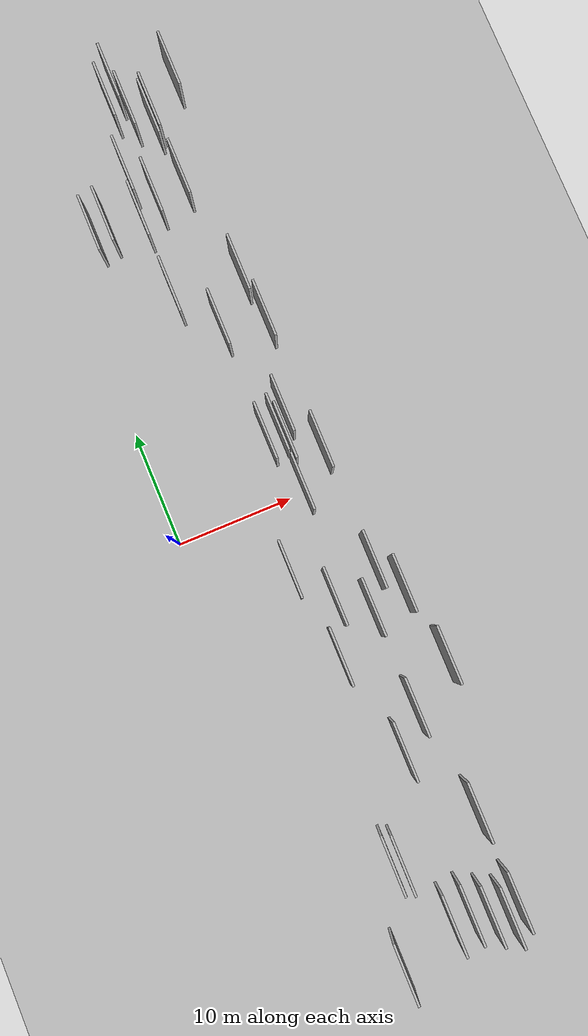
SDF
<?xml version="1.0" encoding="utf-8"?>

<sdf version="1.6">

   <world name="default">

      <gui fullscreen="0">

         <camera name="user_camera">

            <pose>-15 0 4.57585 0 0 0</pose>

            <view_controller>orbit</view_controller>

         </camera>

      </gui>

      <scene>

         <sky>

           <clouds>

             <speed>12</speed>

           </clouds>

         </sky>

         <ambient>0.4 0.4 0.4 1</ambient>

         <background>0.7 0.7 0.7 1</background>

         <shadows>1</shadows>

      </scene>

      <gravity>0 0 -9.8066</gravity>

      <magnetic_field>6e-06 2.3e-05 -4.2e-05</magnetic_field>

      <physics default="0" name="default_physics" type="ode">

         <ode>

            <solver>

               <type>quick</type>

               <iters>10</iters>

               <sor>1.0</sor>

               <use_dynamic_moi_rescaling>0</use_dynamic_moi_rescaling>

            </solver>

            <constraints>

               <cfm>0</cfm>

               <erp>0.2</erp>

               <contact_max_correcting_vel>100</contact_max_correcting_vel>

               <contact_surface_layer>0.001</contact_surface_layer>

            </constraints>

         </ode>

         <max_step_size>0.004</max_step_size>

         <real_time_factor>1</real_time_factor>

         <real_time_update_rate>250</real_time_update_rate>

      </physics>

      <light name="sun" type="directional">

         <cast_shadows>1</cast_shadows>

         <pose>0 0 10 0 0 0</pose>

         <diffuse>0.8 0.8 0.8 1</diffuse>

         <specular>0.2 0.2 0.2 1</specular>

         <attenuation>

            <range>1000</range>

            <constant>0.9</constant>

            <linear>0.01</linear>

            <quadratic>0.001</quadratic>

         </attenuation>

         <direction>-0.5 0.1 -0.9</direction>

      </light>

      <include>

         <name>ground_plane_1</name>

         <uri>model://HANNAS_ground_plane</uri>

         <pose>0 0 0  0 0 0</pose>

      </include>

      <include>

         <name>ground_plane_2</name>

         <uri>model://HANNAS_ground_plane</uri>

         <pose>100 0 0  0 0 0</pose>

      </include>

      <model name="HANNAS_wall_1">

         <static>1</static>

         <pose frame="">10.1466 15.5765 0.0 0.000000 0.000000 1.570796</pose>

         <link name="link">

            <pose frame="">0 0 2.50 0 0 0</pose>

            <collision name="collision">

               <geometry>

                  <box>

                     <size>5.00 0.2 5.00</size>

                  </box>

               </geometry>

               <max_contacts>10</max_contacts>

               <surface>

                  <contact>

                     <ode/>

                  </contact>

                  <bounce/>

                  <friction>

                     <torsional>

                        <ode/>

                     </torsional>

                     <ode/>

                  </friction>

               </surface>

            </collision>

            <visual name="visual">

               <cast_shadows>0</cast_shadows>

               <geometry>

                  <box>

                     <size>5.00 0.2 5.00</size>

                  </box>

               </geometry>

               <material>

                  <script>

                     <uri>model://HANNAS_wall/materials/scripts</uri>

                     <uri>model://HANNAS_wall/materials/textures</uri>

                     <name>vrc/HANNAS_wall</name>

                  </script>

               </material>

            </visual>

            <self_collide>0</self_collide>

            <enable_wind>0</enable_wind>

            <kinematic>0</kinematic>

         </link>

      </model>

      <model name="HANNAS_wall_2">

         <static>1</static>

         <pose frame="">11.3341 0.4889 0.0 0.000000 0.000000 1.570796</pose>

         <link name="link">

            <pose frame="">0 0 2.50 0 0 0</pose>

            <collision name="collision">

               <geometry>

                  <box>

                     <size>5.00 0.2 5.00</size>

                  </box>

               </geometry>

               <max_contacts>10</max_contacts>

               <surface>

                  <contact>

                     <ode/>

                  </contact>

                  <bounce/>

                  <friction>

                     <torsional>

                        <ode/>

                     </torsional>

                     <ode/>

                  </friction>

               </surface>

            </collision>

            <visual name="visual">

               <cast_shadows>0</cast_shadows>

               <geometry>

                  <box>

                     <size>5.00 0.2 5.00</size>

                  </box>

               </geometry>

               <material>

                  <script>

                     <uri>model://HANNAS_wall/materials/scripts</uri>

                     <uri>model://HANNAS_wall/materials/textures</uri>

                     <name>vrc/HANNAS_wall</name>

                  </script>

               </material>

            </visual>

            <self_collide>0</self_collide>

            <enable_wind>0</enable_wind>

            <kinematic>0</kinematic>

         </link>

      </model>

      <model name="HANNAS_wall_3">

         <static>1</static>

         <pose frame="">13.8696 14.8162 0.0 0.000000 0.000000 1.570796</pose>

         <link name="link">

            <pose frame="">0 0 2.50 0 0 0</pose>

            <collision name="collision">

               <geometry>

                  <box>

                     <size>5.00 0.2 5.00</size>

                  </box>

               </geometry>

               <max_contacts>10</max_contacts>

               <surface>

                  <contact>

                     <ode/>

                  </contact>

                  <bounce/>

                  <friction>

                     <torsional>

                        <ode/>

                     </torsional>

                     <ode/>

                  </friction>

               </surface>

            </collision>

            <visual name="visual">

               <cast_shadows>0</cast_shadows>

               <geometry>

                  <box>

                     <size>5.00 0.2 5.00</size>

                  </box>

               </geometry>

               <material>

                  <script>

                     <uri>model://HANNAS_wall/materials/scripts</uri>

                     <uri>model://HANNAS_wall/materials/textures</uri>

                     <name>vrc/HANNAS_wall</name>

                  </script>

               </material>

            </visual>

            <self_collide>0</self_collide>

            <enable_wind>0</enable_wind>

            <kinematic>0</kinematic>

         </link>

      </model>

      <model name="HANNAS_wall_4">

         <static>1</static>

         <pose frame="">7.4729 26.5714 0.0 0.000000 0.000000 1.570796</pose>

         <link name="link">

            <pose frame="">0 0 2.50 0 0 0</pose>

            <collision name="collision">

               <geometry>

                  <box>

                     <size>5.00 0.2 5.00</size>

                  </box>

               </geometry>

               <max_contacts>10</max_contacts>

               <surface>

                  <contact>

                     <ode/>

                  </contact>

                  <bounce/>

                  <friction>

                     <torsional>

                        <ode/>

                     </torsional>

                     <ode/>

                  </friction>

               </surface>

            </collision>

            <visual name="visual">

               <cast_shadows>0</cast_shadows>

               <geometry>

                  <box>

                     <size>5.00 0.2 5.00</size>

                  </box>

               </geometry>

               <material>

                  <script>

                     <uri>model://HANNAS_wall/materials/scripts</uri>

                     <uri>model://HANNAS_wall/materials/textures</uri>

                     <name>vrc/HANNAS_wall</name>

                  </script>

               </material>

            </visual>

            <self_collide>0</self_collide>

            <enable_wind>0</enable_wind>

            <kinematic>0</kinematic>

         </link>

      </model>

      <model name="HANNAS_wall_5">

         <static>1</static>

         <pose frame="">12.2515 6.9655 0.0 0.000000 0.000000 1.570796</pose>

         <link name="link">

            <pose frame="">0 0 2.50 0 0 0</pose>

            <collision name="collision">

               <geometry>

                  <box>

                     <size>5.00 0.2 5.00</size>

                  </box>

               </geometry>

               <max_contacts>10</max_contacts>

               <surface>

                  <contact>

                     <ode/>

                  </contact>

                  <bounce/>

                  <friction>

                     <torsional>

                        <ode/>

                     </torsional>

                     <ode/>

                  </friction>

               </surface>

            </collision>

            <visual name="visual">

               <cast_shadows>0</cast_shadows>

               <geometry>

                  <box>

                     <size>5.00 0.2 5.00</size>

                  </box>

               </geometry>

               <material>

                  <script>

                     <uri>model://HANNAS_wall/materials/scripts</uri>

                     <uri>model://HANNAS_wall/materials/textures</uri>

                     <name>vrc/HANNAS_wall</name>

                  </script>

               </material>

            </visual>

            <self_collide>0</self_collide>

            <enable_wind>0</enable_wind>

            <kinematic>0</kinematic>

         </link>

      </model>

      <model name="HANNAS_wall_6">

         <static>1</static>

         <pose frame="">3.2671 26.9560 0.0 0.000000 0.000000 1.570796</pose>

         <link name="link">

            <pose frame="">0 0 2.50 0 0 0</pose>

            <collision name="collision">

               <geometry>

                  <box>

                     <size>5.00 0.2 5.00</size>

                  </box>

               </geometry>

               <max_contacts>10</max_contacts>

               <surface>

                  <contact>

                     <ode/>

                  </contact>

                  <bounce/>

                  <friction>

                     <torsional>

                        <ode/>

                     </torsional>

                     <ode/>

                  </friction>

               </surface>

            </collision>

            <visual name="visual">

               <cast_shadows>0</cast_shadows>

               <geometry>

                  <box>

                     <size>5.00 0.2 5.00</size>

                  </box>

               </geometry>

               <material>

                  <script>

                     <uri>model://HANNAS_wall/materials/scripts</uri>

                     <uri>model://HANNAS_wall/materials/textures</uri>

                     <name>vrc/HANNAS_wall</name>

                  </script>

               </material>

            </visual>

            <self_collide>0</self_collide>

            <enable_wind>0</enable_wind>

            <kinematic>0</kinematic>

         </link>

      </model>

      <model name="HANNAS_wall_7">

         <static>1</static>

         <pose frame="">4.5960 27.2336 0.0 0.000000 0.000000 1.570796</pose>

         <link name="link">

            <pose frame="">0 0 2.50 0 0 0</pose>

            <collision name="collision">

               <geometry>

                  <box>

                     <size>5.00 0.2 5.00</size>

                  </box>

               </geometry>

               <max_contacts>10</max_contacts>

               <surface>

                  <contact>

                     <ode/>

                  </contact>

                  <bounce/>

                  <friction>

                     <torsional>

                        <ode/>

                     </torsional>

                     <ode/>

                  </friction>

               </surface>

            </collision>

            <visual name="visual">

               <cast_shadows>0</cast_shadows>

               <geometry>

                  <box>

                     <size>5.00 0.2 5.00</size>

                  </box>

               </geometry>

               <material>

                  <script>

                     <uri>model://HANNAS_wall/materials/scripts</uri>

                     <uri>model://HANNAS_wall/materials/textures</uri>

                     <name>vrc/HANNAS_wall</name>

                  </script>

               </material>

            </visual>

            <self_collide>0</self_collide>

            <enable_wind>0</enable_wind>

            <kinematic>0</kinematic>

         </link>

      </model>

      <model name="HANNAS_wall_8">

         <static>1</static>

         <pose frame="">7.7250 -5.6451 0.0 0.000000 0.000000 1.570796</pose>

         <link name="link">

            <pose frame="">0 0 2.50 0 0 0</pose>

            <collision name="collision">

               <geometry>

                  <box>

                     <size>5.00 0.2 5.00</size>

                  </box>

               </geometry>

               <max_contacts>10</max_contacts>

               <surface>

                  <contact>

                     <ode/>

                  </contact>

                  <bounce/>

                  <friction>

                     <torsional>

                        <ode/>

                     </torsional>

                     <ode/>

                  </friction>

               </surface>

            </collision>

            <visual name="visual">

               <cast_shadows>0</cast_shadows>

               <geometry>

                  <box>

                     <size>5.00 0.2 5.00</size>

                  </box>

               </geometry>

               <material>

                  <script>

                     <uri>model://HANNAS_wall/materials/scripts</uri>

                     <uri>model://HANNAS_wall/materials/textures</uri>

                     <name>vrc/HANNAS_wall</name>

                  </script>

               </material>

            </visual>

            <self_collide>0</self_collide>

            <enable_wind>0</enable_wind>

            <kinematic>0</kinematic>

         </link>

      </model>

      <model name="HANNAS_wall_9">

         <static>1</static>

         <pose frame="">14.1129 -28.6746 0.0 0.000000 0.000000 1.570796</pose>

         <link name="link">

            <pose frame="">0 0 2.50 0 0 0</pose>

            <collision name="collision">

               <geometry>

                  <box>

                     <size>5.00 0.2 5.00</size>

                  </box>

               </geometry>

               <max_contacts>10</max_contacts>

               <surface>

                  <contact>

                     <ode/>

                  </contact>

                  <bounce/>

                  <friction>

                     <torsional>

                        <ode/>

                     </torsional>

                     <ode/>

                  </friction>

               </surface>

            </collision>

            <visual name="visual">

               <cast_shadows>0</cast_shadows>

               <geometry>

                  <box>

                     <size>5.00 0.2 5.00</size>

                  </box>

               </geometry>

               <material>

                  <script>

                     <uri>model://HANNAS_wall/materials/scripts</uri>

                     <uri>model://HANNAS_wall/materials/textures</uri>

                     <name>vrc/HANNAS_wall</name>

                  </script>

               </material>

            </visual>

            <self_collide>0</self_collide>

            <enable_wind>0</enable_wind>

            <kinematic>0</kinematic>

         </link>

      </model>

      <model name="HANNAS_wall_10">

         <static>1</static>

         <pose frame="">11.5134 34.4503 0.0 0.000000 0.000000 1.570796</pose>

         <link name="link">

            <pose frame="">0 0 2.50 0 0 0</pose>

            <collision name="collision">

               <geometry>

                  <box>

                     <size>5.00 0.2 5.00</size>

                  </box>

               </geometry>

               <max_contacts>10</max_contacts>

               <surface>

                  <contact>

                     <ode/>

                  </contact>

                  <bounce/>

                  <friction>

                     <torsional>

                        <ode/>

                     </torsional>

                     <ode/>

                  </friction>

               </surface>

            </collision>

            <visual name="visual">

               <cast_shadows>0</cast_shadows>

               <geometry>

                  <box>

                     <size>5.00 0.2 5.00</size>

                  </box>

               </geometry>

               <material>

                  <script>

                     <uri>model://HANNAS_wall/materials/scripts</uri>

                     <uri>model://HANNAS_wall/materials/textures</uri>

                     <name>vrc/HANNAS_wall</name>

                  </script>

               </material>

            </visual>

            <self_collide>0</self_collide>

            <enable_wind>0</enable_wind>

            <kinematic>0</kinematic>

         </link>

      </model>

      <model name="HANNAS_wall_11">

         <static>1</static>

         <pose frame="">11.9102 -36.1783 0.0 0.000000 0.000000 1.570796</pose>

         <link name="link">

            <pose frame="">0 0 2.50 0 0 0</pose>

            <collision name="collision">

               <geometry>

                  <box>

                     <size>5.00 0.2 5.00</size>

                  </box>

               </geometry>

               <max_contacts>10</max_contacts>

               <surface>

                  <contact>

                     <ode/>

                  </contact>

                  <bounce/>

                  <friction>

                     <torsional>

                        <ode/>

                     </torsional>

                     <ode/>

                  </friction>

               </surface>

            </collision>

            <visual name="visual">

               <cast_shadows>0</cast_shadows>

               <geometry>

                  <box>

                     <size>5.00 0.2 5.00</size>

                  </box>

               </geometry>

               <material>

                  <script>

                     <uri>model://HANNAS_wall/materials/scripts</uri>

                     <uri>model://HANNAS_wall/materials/textures</uri>

                     <name>vrc/HANNAS_wall</name>

                  </script>

               </material>

            </visual>

            <self_collide>0</self_collide>

            <enable_wind>0</enable_wind>

            <kinematic>0</kinematic>

         </link>

      </model>

      <model name="HANNAS_wall_12">

         <static>1</static>

         <pose frame="">12.7768 -19.4312 0.0 0.000000 0.000000 1.570796</pose>

         <link name="link">

            <pose frame="">0 0 2.50 0 0 0</pose>

            <collision name="collision">

               <geometry>

                  <box>

                     <size>5.00 0.2 5.00</size>

                  </box>

               </geometry>

               <max_contacts>10</max_contacts>

               <surface>

                  <contact>

                     <ode/>

                  </contact>

                  <bounce/>

                  <friction>

                     <torsional>

                        <ode/>

                     </torsional>

                     <ode/>

                  </friction>

               </surface>

            </collision>

            <visual name="visual">

               <cast_shadows>0</cast_shadows>

               <geometry>

                  <box>

                     <size>5.00 0.2 5.00</size>

                  </box>

               </geometry>

               <material>

                  <script>

                     <uri>model://HANNAS_wall/materials/scripts</uri>

                     <uri>model://HANNAS_wall/materials/textures</uri>

                     <name>vrc/HANNAS_wall</name>

                  </script>

               </material>

            </visual>

            <self_collide>0</self_collide>

            <enable_wind>0</enable_wind>

            <kinematic>0</kinematic>

         </link>

      </model>

      <model name="HANNAS_wall_13">

         <static>1</static>

         <pose frame="">12.6726 -10.9456 0.0 0.000000 0.000000 1.570796</pose>

         <link name="link">

            <pose frame="">0 0 2.50 0 0 0</pose>

            <collision name="collision">

               <geometry>

                  <box>

                     <size>5.00 0.2 5.00</size>

                  </box>

               </geometry>

               <max_contacts>10</max_contacts>

               <surface>

                  <contact>

                     <ode/>

                  </contact>

                  <bounce/>

                  <friction>

                     <torsional>

                        <ode/>

                     </torsional>

                     <ode/>

                  </friction>

               </surface>

            </collision>

            <visual name="visual">

               <cast_shadows>0</cast_shadows>

               <geometry>

                  <box>

                     <size>5.00 0.2 5.00</size>

                  </box>

               </geometry>

               <material>

                  <script>

                     <uri>model://HANNAS_wall/materials/scripts</uri>

                     <uri>model://HANNAS_wall/materials/textures</uri>

                     <name>vrc/HANNAS_wall</name>

                  </script>

               </material>

            </visual>

            <self_collide>0</self_collide>

            <enable_wind>0</enable_wind>

            <kinematic>0</kinematic>

         </link>

      </model>

      <model name="HANNAS_wall_14">

         <static>1</static>

         <pose frame="">10.5864 -22.2286 0.0 0.000000 0.000000 1.570796</pose>

         <link name="link">

            <pose frame="">0 0 2.50 0 0 0</pose>

            <collision name="collision">

               <geometry>

                  <box>

                     <size>5.00 0.2 5.00</size>

                  </box>

               </geometry>

               <max_contacts>10</max_contacts>

               <surface>

                  <contact>

                     <ode/>

                  </contact>

                  <bounce/>

                  <friction>

                     <torsional>

                        <ode/>

                     </torsional>

                     <ode/>

                  </friction>

               </surface>

            </collision>

            <visual name="visual">

               <cast_shadows>0</cast_shadows>

               <geometry>

                  <box>

                     <size>5.00 0.2 5.00</size>

                  </box>

               </geometry>

               <material>

                  <script>

                     <uri>model://HANNAS_wall/materials/scripts</uri>

                     <uri>model://HANNAS_wall/materials/textures</uri>

                     <name>vrc/HANNAS_wall</name>

                  </script>

               </material>

            </visual>

            <self_collide>0</self_collide>

            <enable_wind>0</enable_wind>

            <kinematic>0</kinematic>

         </link>

      </model>

      <model name="HANNAS_wall_15">

         <static>1</static>

         <pose frame="">15.6768 -10.1167 0.0 0.000000 0.000000 1.570796</pose>

         <link name="link">

            <pose frame="">0 0 2.50 0 0 0</pose>

            <collision name="collision">

               <geometry>

                  <box>

                     <size>5.00 0.2 5.00</size>

                  </box>

               </geometry>

               <max_contacts>10</max_contacts>

               <surface>

                  <contact>

                     <ode/>

                  </contact>

                  <bounce/>

                  <friction>

                     <torsional>

                        <ode/>

                     </torsional>

                     <ode/>

                  </friction>

               </surface>

            </collision>

            <visual name="visual">

               <cast_shadows>0</cast_shadows>

               <geometry>

                  <box>

                     <size>5.00 0.2 5.00</size>

                  </box>

               </geometry>

               <material>

                  <script>

                     <uri>model://HANNAS_wall/materials/scripts</uri>

                     <uri>model://HANNAS_wall/materials/textures</uri>

                     <name>vrc/HANNAS_wall</name>

                  </script>

               </material>

            </visual>

            <self_collide>0</self_collide>

            <enable_wind>0</enable_wind>

            <kinematic>0</kinematic>

         </link>

      </model>

      <model name="HANNAS_wall_16">

         <static>1</static>

         <pose frame="">4.1034 -37.5256 0.0 0.000000 0.000000 1.570796</pose>

         <link name="link">

            <pose frame="">0 0 2.50 0 0 0</pose>

            <collision name="collision">

               <geometry>

                  <box>

                     <size>5.00 0.2 5.00</size>

                  </box>

               </geometry>

               <max_contacts>10</max_contacts>

               <surface>

                  <contact>

                     <ode/>

                  </contact>

                  <bounce/>

                  <friction>

                     <torsional>

                        <ode/>

                     </torsional>

                     <ode/>

                  </friction>

               </surface>

            </collision>

            <visual name="visual">

               <cast_shadows>0</cast_shadows>

               <geometry>

                  <box>

                     <size>5.00 0.2 5.00</size>

                  </box>

               </geometry>

               <material>

                  <script>

                     <uri>model://HANNAS_wall/materials/scripts</uri>

                     <uri>model://HANNAS_wall/materials/textures</uri>

                     <name>vrc/HANNAS_wall</name>

                  </script>

               </material>

            </visual>

            <self_collide>0</self_collide>

            <enable_wind>0</enable_wind>

            <kinematic>0</kinematic>

         </link>

      </model>

      <model name="HANNAS_wall_17">

         <static>1</static>

         <pose frame="">11.7766 34.9597 0.0 0.000000 0.000000 1.570796</pose>

         <link name="link">

            <pose frame="">0 0 2.50 0 0 0</pose>

            <collision name="collision">

               <geometry>

                  <box>

                     <size>5.00 0.2 5.00</size>

                  </box>

               </geometry>

               <max_contacts>10</max_contacts>

               <surface>

                  <contact>

                     <ode/>

                  </contact>

                  <bounce/>

                  <friction>

                     <torsional>

                        <ode/>

                     </torsional>

                     <ode/>

                  </friction>

               </surface>

            </collision>

            <visual name="visual">

               <cast_shadows>0</cast_shadows>

               <geometry>

                  <box>

                     <size>5.00 0.2 5.00</size>

                  </box>

               </geometry>

               <material>

                  <script>

                     <uri>model://HANNAS_wall/materials/scripts</uri>

                     <uri>model://HANNAS_wall/materials/textures</uri>

                     <name>vrc/HANNAS_wall</name>

                  </script>

               </material>

            </visual>

            <self_collide>0</self_collide>

            <enable_wind>0</enable_wind>

            <kinematic>0</kinematic>

         </link>

      </model>

      <model name="HANNAS_wall_18">

         <static>1</static>

         <pose frame="">7.4791 19.6140 0.0 0.000000 0.000000 1.570796</pose>

         <link name="link">

            <pose frame="">0 0 2.50 0 0 0</pose>

            <collision name="collision">

               <geometry>

                  <box>

                     <size>5.00 0.2 5.00</size>

                  </box>

               </geometry>

               <max_contacts>10</max_contacts>

               <surface>

                  <contact>

                     <ode/>

                  </contact>

                  <bounce/>

                  <friction>

                     <torsional>

                        <ode/>

                     </torsional>

                     <ode/>

                  </friction>

               </surface>

            </collision>

            <visual name="visual">

               <cast_shadows>0</cast_shadows>

               <geometry>

                  <box>

                     <size>5.00 0.2 5.00</size>

                  </box>

               </geometry>

               <material>

                  <script>

                     <uri>model://HANNAS_wall/materials/scripts</uri>

                     <uri>model://HANNAS_wall/materials/textures</uri>

                     <name>vrc/HANNAS_wall</name>

                  </script>

               </material>

            </visual>

            <self_collide>0</self_collide>

            <enable_wind>0</enable_wind>

            <kinematic>0</kinematic>

         </link>

      </model>

      <model name="HANNAS_wall_19">

         <static>1</static>

         <pose frame="">7.0450 -30.0517 0.0 0.000000 0.000000 1.570796</pose>

         <link name="link">

            <pose frame="">0 0 2.50 0 0 0</pose>

            <collision name="collision">

               <geometry>

                  <box>

                     <size>5.00 0.2 5.00</size>

                  </box>

               </geometry>

               <max_contacts>10</max_contacts>

               <surface>

                  <contact>

                     <ode/>

                  </contact>

                  <bounce/>

                  <friction>

                     <torsional>

                        <ode/>

                     </torsional>

                     <ode/>

                  </friction>

               </surface>

            </collision>

            <visual name="visual">

               <cast_shadows>0</cast_shadows>

               <geometry>

                  <box>

                     <size>5.00 0.2 5.00</size>

                  </box>

               </geometry>

               <material>

                  <script>

                     <uri>model://HANNAS_wall/materials/scripts</uri>

                     <uri>model://HANNAS_wall/materials/textures</uri>

                     <name>vrc/HANNAS_wall</name>

                  </script>

               </material>

            </visual>

            <self_collide>0</self_collide>

            <enable_wind>0</enable_wind>

            <kinematic>0</kinematic>

         </link>

      </model>

      <model name="HANNAS_wall_20">

         <static>1</static>

         <pose frame="">10.1971 -8.9991 0.0 0.000000 0.000000 1.570796</pose>

         <link name="link">

            <pose frame="">0 0 2.50 0 0 0</pose>

            <collision name="collision">

               <geometry>

                  <box>

                     <size>5.00 0.2 5.00</size>

                  </box>

               </geometry>

               <max_contacts>10</max_contacts>

               <surface>

                  <contact>

                     <ode/>

                  </contact>

                  <bounce/>

                  <friction>

                     <torsional>

                        <ode/>

                     </torsional>

                     <ode/>

                  </friction>

               </surface>

            </collision>

            <visual name="visual">

               <cast_shadows>0</cast_shadows>

               <geometry>

                  <box>

                     <size>5.00 0.2 5.00</size>

                  </box>

               </geometry>

               <material>

                  <script>

                     <uri>model://HANNAS_wall/materials/scripts</uri>

                     <uri>model://HANNAS_wall/materials/textures</uri>

                     <name>vrc/HANNAS_wall</name>

                  </script>

               </material>

            </visual>

            <self_collide>0</self_collide>

            <enable_wind>0</enable_wind>

            <kinematic>0</kinematic>

         </link>

      </model>

      <model name="HANNAS_wall_21">

         <static>1</static>

         <pose frame="">16.7005 -16.6546 0.0 0.000000 0.000000 1.570796</pose>

         <link name="link">

            <pose frame="">0 0 2.50 0 0 0</pose>

            <collision name="collision">

               <geometry>

                  <box>

                     <size>5.00 0.2 5.00</size>

                  </box>

               </geometry>

               <max_contacts>10</max_contacts>

               <surface>

                  <contact>

                     <ode/>

                  </contact>

                  <bounce/>

                  <friction>

                     <torsional>

                        <ode/>

                     </torsional>

                     <ode/>

                  </friction>

               </surface>

            </collision>

            <visual name="visual">

               <cast_shadows>0</cast_shadows>

               <geometry>

                  <box>

                     <size>5.00 0.2 5.00</size>

                  </box>

               </geometry>

               <material>

                  <script>

                     <uri>model://HANNAS_wall/materials/scripts</uri>

                     <uri>model://HANNAS_wall/materials/textures</uri>

                     <name>vrc/HANNAS_wall</name>

                  </script>

               </material>

            </visual>

            <self_collide>0</self_collide>

            <enable_wind>0</enable_wind>

            <kinematic>0</kinematic>

         </link>

      </model>

      <model name="HANNAS_wall_22">

         <static>1</static>

         <pose frame="">11.2928 5.7085 0.0 0.000000 0.000000 1.570796</pose>

         <link name="link">

            <pose frame="">0 0 2.50 0 0 0</pose>

            <collision name="collision">

               <geometry>

                  <box>

                     <size>5.00 0.2 5.00</size>

                  </box>

               </geometry>

               <max_contacts>10</max_contacts>

               <surface>

                  <contact>

                     <ode/>

                  </contact>

                  <bounce/>

                  <friction>

                     <torsional>

                        <ode/>

                     </torsional>

                     <ode/>

                  </friction>

               </surface>

            </collision>

            <visual name="visual">

               <cast_shadows>0</cast_shadows>

               <geometry>

                  <box>

                     <size>5.00 0.2 5.00</size>

                  </box>

               </geometry>

               <material>

                  <script>

                     <uri>model://HANNAS_wall/materials/scripts</uri>

                     <uri>model://HANNAS_wall/materials/textures</uri>

                     <name>vrc/HANNAS_wall</name>

                  </script>

               </material>

            </visual>

            <self_collide>0</self_collide>

            <enable_wind>0</enable_wind>

            <kinematic>0</kinematic>

         </link>

      </model>

      <model name="HANNAS_wall_23">

         <static>1</static>

         <pose frame="">11.6220 4.8731 0.0 0.000000 0.000000 1.570796</pose>

         <link name="link">

            <pose frame="">0 0 2.50 0 0 0</pose>

            <collision name="collision">

               <geometry>

                  <box>

                     <size>5.00 0.2 5.00</size>

                  </box>

               </geometry>

               <max_contacts>10</max_contacts>

               <surface>

                  <contact>

                     <ode/>

                  </contact>

                  <bounce/>

                  <friction>

                     <torsional>

                        <ode/>

                     </torsional>

                     <ode/>

                  </friction>

               </surface>

            </collision>

            <visual name="visual">

               <cast_shadows>0</cast_shadows>

               <geometry>

                  <box>

                     <size>5.00 0.2 5.00</size>

                  </box>

               </geometry>

               <material>

                  <script>

                     <uri>model://HANNAS_wall/materials/scripts</uri>

                     <uri>model://HANNAS_wall/materials/textures</uri>

                     <name>vrc/HANNAS_wall</name>

                  </script>

               </material>

            </visual>

            <self_collide>0</self_collide>

            <enable_wind>0</enable_wind>

            <kinematic>0</kinematic>

         </link>

      </model>

      <model name="HANNAS_wall_24">

         <static>1</static>

         <pose frame="">13.2622 -36.8241 0.0 0.000000 0.000000 1.570796</pose>

         <link name="link">

            <pose frame="">0 0 2.50 0 0 0</pose>

            <collision name="collision">

               <geometry>

                  <box>

                     <size>5.00 0.2 5.00</size>

                  </box>

               </geometry>

               <max_contacts>10</max_contacts>

               <surface>

                  <contact>

                     <ode/>

                  </contact>

                  <bounce/>

                  <friction>

                     <torsional>

                        <ode/>

                     </torsional>

                     <ode/>

                  </friction>

               </surface>

            </collision>

            <visual name="visual">

               <cast_shadows>0</cast_shadows>

               <geometry>

                  <box>

                     <size>5.00 0.2 5.00</size>

                  </box>

               </geometry>

               <material>

                  <script>

                     <uri>model://HANNAS_wall/materials/scripts</uri>

                     <uri>model://HANNAS_wall/materials/textures</uri>

                     <name>vrc/HANNAS_wall</name>

                  </script>

               </material>

            </visual>

            <self_collide>0</self_collide>

            <enable_wind>0</enable_wind>

            <kinematic>0</kinematic>

         </link>

      </model>

      <model name="HANNAS_wall_25">

         <static>1</static>

         <pose frame="">14.2227 -7.4866 0.0 0.000000 0.000000 1.570796</pose>

         <link name="link">

            <pose frame="">0 0 2.50 0 0 0</pose>

            <collision name="collision">

               <geometry>

                  <box>

                     <size>5.00 0.2 5.00</size>

                  </box>

               </geometry>

               <max_contacts>10</max_contacts>

               <surface>

                  <contact>

                     <ode/>

                  </contact>

                  <bounce/>

                  <friction>

                     <torsional>

                        <ode/>

                     </torsional>

                     <ode/>

                  </friction>

               </surface>

            </collision>

            <visual name="visual">

               <cast_shadows>0</cast_shadows>

               <geometry>

                  <box>

                     <size>5.00 0.2 5.00</size>

                  </box>

               </geometry>

               <material>

                  <script>

                     <uri>model://HANNAS_wall/materials/scripts</uri>

                     <uri>model://HANNAS_wall/materials/textures</uri>

                     <name>vrc/HANNAS_wall</name>

                  </script>

               </material>

            </visual>

            <self_collide>0</self_collide>

            <enable_wind>0</enable_wind>

            <kinematic>0</kinematic>

         </link>

      </model>

      <model name="HANNAS_wall_26">

         <static>1</static>

         <pose frame="">14.6202 37.6828 0.0 0.000000 0.000000 1.570796</pose>

         <link name="link">

            <pose frame="">0 0 2.50 0 0 0</pose>

            <collision name="collision">

               <geometry>

                  <box>

                     <size>5.00 0.2 5.00</size>

                  </box>

               </geometry>

               <max_contacts>10</max_contacts>

               <surface>

                  <contact>

                     <ode/>

                  </contact>

                  <bounce/>

                  <friction>

                     <torsional>

                        <ode/>

                     </torsional>

                     <ode/>

                  </friction>

               </surface>

            </collision>

            <visual name="visual">

               <cast_shadows>0</cast_shadows>

               <geometry>

                  <box>

                     <size>5.00 0.2 5.00</size>

                  </box>

               </geometry>

               <material>

                  <script>

                     <uri>model://HANNAS_wall/materials/scripts</uri>

                     <uri>model://HANNAS_wall/materials/textures</uri>

                     <name>vrc/HANNAS_wall</name>

                  </script>

               </material>

            </visual>

            <self_collide>0</self_collide>

            <enable_wind>0</enable_wind>

            <kinematic>0</kinematic>

         </link>

      </model>

      <model name="HANNAS_wall_27">

         <static>1</static>

         <pose frame="">8.9148 -35.6876 0.0 0.000000 0.000000 1.570796</pose>

         <link name="link">

            <pose frame="">0 0 2.50 0 0 0</pose>

            <collision name="collision">

               <geometry>

                  <box>

                     <size>5.00 0.2 5.00</size>

                  </box>

               </geometry>

               <max_contacts>10</max_contacts>

               <surface>

                  <contact>

                     <ode/>

                  </contact>

                  <bounce/>

                  <friction>

                     <torsional>

                        <ode/>

                     </torsional>

                     <ode/>

                  </friction>

               </surface>

            </collision>

            <visual name="visual">

               <cast_shadows>0</cast_shadows>

               <geometry>

                  <box>

                     <size>5.00 0.2 5.00</size>

                  </box>

               </geometry>

               <material>

                  <script>

                     <uri>model://HANNAS_wall/materials/scripts</uri>

                     <uri>model://HANNAS_wall/materials/textures</uri>

                     <name>vrc/HANNAS_wall</name>

                  </script>

               </material>

            </visual>

            <self_collide>0</self_collide>

            <enable_wind>0</enable_wind>

            <kinematic>0</kinematic>

         </link>

      </model>

      <model name="HANNAS_wall_28">

         <static>1</static>

         <pose frame="">10.1235 5.4149 0.0 0.000000 0.000000 1.570796</pose>

         <link name="link">

            <pose frame="">0 0 2.50 0 0 0</pose>

            <collision name="collision">

               <geometry>

                  <box>

                     <size>5.00 0.2 5.00</size>

                  </box>

               </geometry>

               <max_contacts>10</max_contacts>

               <surface>

                  <contact>

                     <ode/>

                  </contact>

                  <bounce/>

                  <friction>

                     <torsional>

                        <ode/>

                     </torsional>

                     <ode/>

                  </friction>

               </surface>

            </collision>

            <visual name="visual">

               <cast_shadows>0</cast_shadows>

               <geometry>

                  <box>

                     <size>5.00 0.2 5.00</size>

                  </box>

               </geometry>

               <material>

                  <script>

                     <uri>model://HANNAS_wall/materials/scripts</uri>

                     <uri>model://HANNAS_wall/materials/textures</uri>

                     <name>vrc/HANNAS_wall</name>

                  </script>

               </material>

            </visual>

            <self_collide>0</self_collide>

            <enable_wind>0</enable_wind>

            <kinematic>0</kinematic>

         </link>

      </model>

      <model name="HANNAS_wall_29">

         <static>1</static>

         <pose frame="">7.7133 30.6684 0.0 0.000000 0.000000 1.570796</pose>

         <link name="link">

            <pose frame="">0 0 2.50 0 0 0</pose>

            <collision name="collision">

               <geometry>

                  <box>

                     <size>5.00 0.2 5.00</size>

                  </box>

               </geometry>

               <max_contacts>10</max_contacts>

               <surface>

                  <contact>

                     <ode/>

                  </contact>

                  <bounce/>

                  <friction>

                     <torsional>

                        <ode/>

                     </torsional>

                     <ode/>

                  </friction>

               </surface>

            </collision>

            <visual name="visual">

               <cast_shadows>0</cast_shadows>

               <geometry>

                  <box>

                     <size>5.00 0.2 5.00</size>

                  </box>

               </geometry>

               <material>

                  <script>

                     <uri>model://HANNAS_wall/materials/scripts</uri>

                     <uri>model://HANNAS_wall/materials/textures</uri>

                     <name>vrc/HANNAS_wall</name>

                  </script>

               </material>

            </visual>

            <self_collide>0</self_collide>

            <enable_wind>0</enable_wind>

            <kinematic>0</kinematic>

         </link>

      </model>

      <model name="HANNAS_wall_30">

         <static>1</static>

         <pose frame="">14.2670 -35.9809 0.0 0.000000 0.000000 1.570796</pose>

         <link name="link">

            <pose frame="">0 0 2.50 0 0 0</pose>

            <collision name="collision">

               <geometry>

                  <box>

                     <size>5.00 0.2 5.00</size>

                  </box>

               </geometry>

               <max_contacts>10</max_contacts>

               <surface>

                  <contact>

                     <ode/>

                  </contact>

                  <bounce/>

                  <friction>

                     <torsional>

                        <ode/>

                     </torsional>

                     <ode/>

                  </friction>

               </surface>

            </collision>

            <visual name="visual">

               <cast_shadows>0</cast_shadows>

               <geometry>

                  <box>

                     <size>5.00 0.2 5.00</size>

                  </box>

               </geometry>

               <material>

                  <script>

                     <uri>model://HANNAS_wall/materials/scripts</uri>

                     <uri>model://HANNAS_wall/materials/textures</uri>

                     <name>vrc/HANNAS_wall</name>

                  </script>

               </material>

            </visual>

            <self_collide>0</self_collide>

            <enable_wind>0</enable_wind>

            <kinematic>0</kinematic>

         </link>

      </model>

      <model name="HANNAS_wall_31">

         <static>1</static>

         <pose frame="">8.6351 37.2153 0.0 0.000000 0.000000 1.570796</pose>

         <link name="link">

            <pose frame="">0 0 2.50 0 0 0</pose>

            <collision name="collision">

               <geometry>

                  <box>

                     <size>5.00 0.2 5.00</size>

                  </box>

               </geometry>

               <max_contacts>10</max_contacts>

               <surface>

                  <contact>

                     <ode/>

                  </contact>

                  <bounce/>

                  <friction>

                     <torsional>

                        <ode/>

                     </torsional>

                     <ode/>

                  </friction>

               </surface>

            </collision>

            <visual name="visual">

               <cast_shadows>0</cast_shadows>

               <geometry>

                  <box>

                     <size>5.00 0.2 5.00</size>

                  </box>

               </geometry>

               <material>

                  <script>

                     <uri>model://HANNAS_wall/materials/scripts</uri>

                     <uri>model://HANNAS_wall/materials/textures</uri>

                     <name>vrc/HANNAS_wall</name>

                  </script>

               </material>

            </visual>

            <self_collide>0</self_collide>

            <enable_wind>0</enable_wind>

            <kinematic>0</kinematic>

         </link>

      </model>

      <model name="HANNAS_wall_32">

         <static>1</static>

         <pose frame="">8.8013 -13.5581 0.0 0.000000 0.000000 1.570796</pose>

         <link name="link">

            <pose frame="">0 0 2.50 0 0 0</pose>

            <collision name="collision">

               <geometry>

                  <box>

                     <size>5.00 0.2 5.00</size>

                  </box>

               </geometry>

               <max_contacts>10</max_contacts>

               <surface>

                  <contact>

                     <ode/>

                  </contact>

                  <bounce/>

                  <friction>

                     <torsional>

                        <ode/>

                     </torsional>

                     <ode/>

                  </friction>

               </surface>

            </collision>

            <visual name="visual">

               <cast_shadows>0</cast_shadows>

               <geometry>

                  <box>

                     <size>5.00 0.2 5.00</size>

                  </box>

               </geometry>

               <material>

                  <script>

                     <uri>model://HANNAS_wall/materials/scripts</uri>

                     <uri>model://HANNAS_wall/materials/textures</uri>

                     <name>vrc/HANNAS_wall</name>

                  </script>

               </material>

            </visual>

            <self_collide>0</self_collide>

            <enable_wind>0</enable_wind>

            <kinematic>0</kinematic>

         </link>

      </model>

      <model name="HANNAS_wall_33">

         <static>1</static>

         <pose frame="">11.9092 28.6420 0.0 0.000000 0.000000 1.570796</pose>

         <link name="link">

            <pose frame="">0 0 2.50 0 0 0</pose>

            <collision name="collision">

               <geometry>

                  <box>

                     <size>5.00 0.2 5.00</size>

                  </box>

               </geometry>

               <max_contacts>10</max_contacts>

               <surface>

                  <contact>

                     <ode/>

                  </contact>

                  <bounce/>

                  <friction>

                     <torsional>

                        <ode/>

                     </torsional>

                     <ode/>

                  </friction>

               </surface>

            </collision>

            <visual name="visual">

               <cast_shadows>0</cast_shadows>

               <geometry>

                  <box>

                     <size>5.00 0.2 5.00</size>

                  </box>

               </geometry>

               <material>

                  <script>

                     <uri>model://HANNAS_wall/materials/scripts</uri>

                     <uri>model://HANNAS_wall/materials/textures</uri>

                     <name>vrc/HANNAS_wall</name>

                  </script>

               </material>

            </visual>

            <self_collide>0</self_collide>

            <enable_wind>0</enable_wind>

            <kinematic>0</kinematic>

         </link>

      </model>

      <model name="HANNAS_wall_34">

         <static>1</static>

         <pose frame="">14.0360 3.0728 0.0 0.000000 0.000000 1.570796</pose>

         <link name="link">

            <pose frame="">0 0 2.50 0 0 0</pose>

            <collision name="collision">

               <geometry>

                  <box>

                     <size>5.00 0.2 5.00</size>

                  </box>

               </geometry>

               <max_contacts>10</max_contacts>

               <surface>

                  <contact>

                     <ode/>

                  </contact>

                  <bounce/>

                  <friction>

                     <torsional>

                        <ode/>

                     </torsional>

                     <ode/>

                  </friction>

               </surface>

            </collision>

            <visual name="visual">

               <cast_shadows>0</cast_shadows>

               <geometry>

                  <box>

                     <size>5.00 0.2 5.00</size>

                  </box>

               </geometry>

               <material>

                  <script>

                     <uri>model://HANNAS_wall/materials/scripts</uri>

                     <uri>model://HANNAS_wall/materials/textures</uri>

                     <name>vrc/HANNAS_wall</name>

                  </script>

               </material>

            </visual>

            <self_collide>0</self_collide>

            <enable_wind>0</enable_wind>

            <kinematic>0</kinematic>

         </link>

      </model>

      <model name="HANNAS_wall_35">

         <static>1</static>

         <pose frame="">13.3834 19.1776 0.0 0.000000 0.000000 1.570796</pose>

         <link name="link">

            <pose frame="">0 0 2.50 0 0 0</pose>

            <collision name="collision">

               <geometry>

                  <box>

                     <size>5.00 0.2 5.00</size>

                  </box>

               </geometry>

               <max_contacts>10</max_contacts>

               <surface>

                  <contact>

                     <ode/>

                  </contact>

                  <bounce/>

                  <friction>

                     <torsional>

                        <ode/>

                     </torsional>

                     <ode/>

                  </friction>

               </surface>

            </collision>

            <visual name="visual">

               <cast_shadows>0</cast_shadows>

               <geometry>

                  <box>

                     <size>5.00 0.2 5.00</size>

                  </box>

               </geometry>

               <material>

                  <script>

                     <uri>model://HANNAS_wall/materials/scripts</uri>

                     <uri>model://HANNAS_wall/materials/textures</uri>

                     <name>vrc/HANNAS_wall</name>

                  </script>

               </material>

            </visual>

            <self_collide>0</self_collide>

            <enable_wind>0</enable_wind>

            <kinematic>0</kinematic>

         </link>

      </model>

      <model name="HANNAS_wall_36">

         <static>1</static>

         <pose frame="">9.2271 28.0328 0.0 0.000000 0.000000 1.570796</pose>

         <link name="link">

            <pose frame="">0 0 2.50 0 0 0</pose>

            <collision name="collision">

               <geometry>

                  <box>

                     <size>5.00 0.2 5.00</size>

                  </box>

               </geometry>

               <max_contacts>10</max_contacts>

               <surface>

                  <contact>

                     <ode/>

                  </contact>

                  <bounce/>

                  <friction>

                     <torsional>

                        <ode/>

                     </torsional>

                     <ode/>

                  </friction>

               </surface>

            </collision>

            <visual name="visual">

               <cast_shadows>0</cast_shadows>

               <geometry>

                  <box>

                     <size>5.00 0.2 5.00</size>

                  </box>

               </geometry>

               <material>

                  <script>

                     <uri>model://HANNAS_wall/materials/scripts</uri>

                     <uri>model://HANNAS_wall/materials/textures</uri>

                     <name>vrc/HANNAS_wall</name>

                  </script>

               </material>

            </visual>

            <self_collide>0</self_collide>

            <enable_wind>0</enable_wind>

            <kinematic>0</kinematic>

         </link>

      </model>

      <model name="HANNAS_wall_37">

         <static>1</static>

         <pose frame="">9.9235 35.8526 0.0 0.000000 0.000000 1.570796</pose>

         <link name="link">

            <pose frame="">0 0 2.50 0 0 0</pose>

            <collision name="collision">

               <geometry>

                  <box>

                     <size>5.00 0.2 5.00</size>

                  </box>

               </geometry>

               <max_contacts>10</max_contacts>

               <surface>

                  <contact>

                     <ode/>

                  </contact>

                  <bounce/>

                  <friction>

                     <torsional>

                        <ode/>

                     </torsional>

                     <ode/>

                  </friction>

               </surface>

            </collision>

            <visual name="visual">

               <cast_shadows>0</cast_shadows>

               <geometry>

                  <box>

                     <size>5.00 0.2 5.00</size>

                  </box>

               </geometry>

               <material>

                  <script>

                     <uri>model://HANNAS_wall/materials/scripts</uri>

                     <uri>model://HANNAS_wall/materials/textures</uri>

                     <name>vrc/HANNAS_wall</name>

                  </script>

               </material>

            </visual>

            <self_collide>0</self_collide>

            <enable_wind>0</enable_wind>

            <kinematic>0</kinematic>

         </link>

      </model>

      <model name="HANNAS_wall_38">

         <static>1</static>

         <pose frame="">6.3288 -29.7821 0.0 0.000000 0.000000 1.570796</pose>

         <link name="link">

            <pose frame="">0 0 2.50 0 0 0</pose>

            <collision name="collision">

               <geometry>

                  <box>

                     <size>5.00 0.2 5.00</size>

                  </box>

               </geometry>

               <max_contacts>10</max_contacts>

               <surface>

                  <contact>

                     <ode/>

                  </contact>

                  <bounce/>

                  <friction>

                     <torsional>

                        <ode/>

                     </torsional>

                     <ode/>

                  </friction>

               </surface>

            </collision>

            <visual name="visual">

               <cast_shadows>0</cast_shadows>

               <geometry>

                  <box>

                     <size>5.00 0.2 5.00</size>

                  </box>

               </geometry>

               <material>

                  <script>

                     <uri>model://HANNAS_wall/materials/scripts</uri>

                     <uri>model://HANNAS_wall/materials/textures</uri>

                     <name>vrc/HANNAS_wall</name>

                  </script>

               </material>

            </visual>

            <self_collide>0</self_collide>

            <enable_wind>0</enable_wind>

            <kinematic>0</kinematic>

         </link>

      </model>

      <model name="HANNAS_wall_39">

         <static>1</static>

         <pose frame="">10.4777 -35.4643 0.0 0.000000 0.000000 1.570796</pose>

         <link name="link">

            <pose frame="">0 0 2.50 0 0 0</pose>

            <collision name="collision">

               <geometry>

                  <box>

                     <size>5.00 0.2 5.00</size>

                  </box>

               </geometry>

               <max_contacts>10</max_contacts>

               <surface>

                  <contact>

                     <ode/>

                  </contact>

                  <bounce/>

                  <friction>

                     <torsional>

                        <ode/>

                     </torsional>

                     <ode/>

                  </friction>

               </surface>

            </collision>

            <visual name="visual">

               <cast_shadows>0</cast_shadows>

               <geometry>

                  <box>

                     <size>5.00 0.2 5.00</size>

                  </box>

               </geometry>

               <material>

                  <script>

                     <uri>model://HANNAS_wall/materials/scripts</uri>

                     <uri>model://HANNAS_wall/materials/textures</uri>

                     <name>vrc/HANNAS_wall</name>

                  </script>

               </material>

            </visual>

            <self_collide>0</self_collide>

            <enable_wind>0</enable_wind>

            <kinematic>0</kinematic>

         </link>

      </model>

      <model name="HANNAS_wall_40">

         <static>1</static>

         <pose frame="">9.5600 38.6150 0.0 0.000000 0.000000 1.570796</pose>

         <link name="link">

            <pose frame="">0 0 2.50 0 0 0</pose>

            <collision name="collision">

               <geometry>

                  <box>

                     <size>5.00 0.2 5.00</size>

                  </box>

               </geometry>

               <max_contacts>10</max_contacts>

               <surface>

                  <contact>

                     <ode/>

                  </contact>

                  <bounce/>

                  <friction>

                     <torsional>

                        <ode/>

                     </torsional>

                     <ode/>

                  </friction>

               </surface>

            </collision>

            <visual name="visual">

               <cast_shadows>0</cast_shadows>

               <geometry>

                  <box>

                     <size>5.00 0.2 5.00</size>

                  </box>

               </geometry>

               <material>

                  <script>

                     <uri>model://HANNAS_wall/materials/scripts</uri>

                     <uri>model://HANNAS_wall/materials/textures</uri>

                     <name>vrc/HANNAS_wall</name>

                  </script>

               </material>

            </visual>

            <self_collide>0</self_collide>

            <enable_wind>0</enable_wind>

            <kinematic>0</kinematic>

         </link>

      </model>

   </world>

</sdf>
